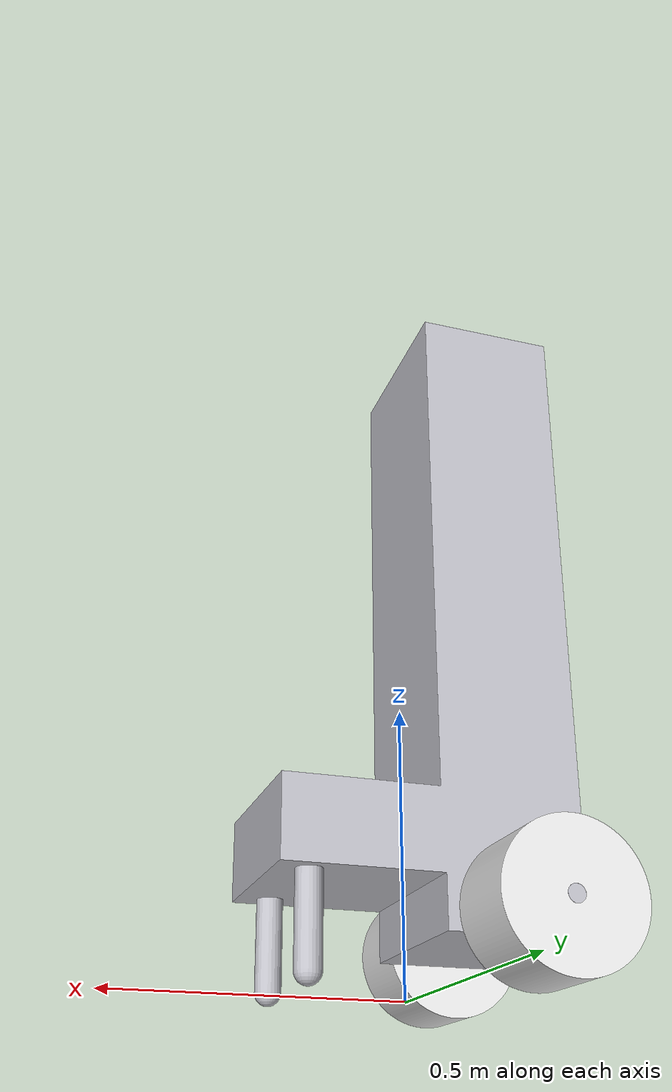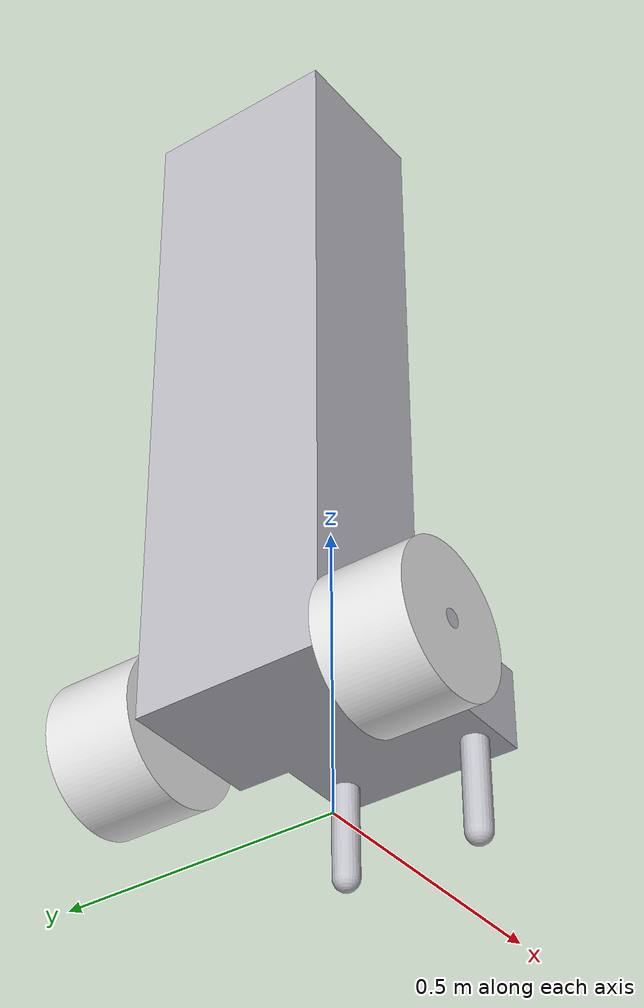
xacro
<?xml version="1.0" ?>
<robot name="simplify" xmlns:xacro="http://www.ros.org/wiki/xacro">

<xacro:include filename="$(find simplify_description)/urdf/materials.xacro" />
<xacro:include filename="$(find simplify_description)/urdf/simplify.trans" />
<xacro:include filename="$(find simplify_description)/urdf/simplify.gazebo" />
<link name="base_link">
  <inertial>
    <origin xyz="-0.10155438032503997 4.4554234660986317e-17 0.6132554860302354" rpy="0 0 0"/>
    <mass value="282.1921384796744"/>
    <inertia ixx="35.382906" iyy="36.423757" izz="5.928749" ixy="0.0" iyz="0.0" ixz="3.235891"/>
  </inertial>
  <visual>
    <origin xyz="0 0 0" rpy="0 0 0"/>
    <geometry>
      <mesh filename="package://simplify_description/meshes/base_link.stl" scale="0.001 0.001 0.001"/>
    </geometry>
    <material name="aluminum_satin"/>
  </visual>
  <collision>
    <origin xyz="0 0 0" rpy="0 0 0"/>
    <geometry>
      <mesh filename="package://simplify_description/meshes/base_link.stl" scale="0.001 0.001 0.001"/>
    </geometry>
  </collision>
</link>

<link name="camera_1">
  <inertial>
    <origin xyz="0.0 3.860015400081353e-17 0.022499999999999964" rpy="0 0 0"/>
    <mass value="2.7320075113780233"/>
    <inertia ixx="0.002169" iyy="0.002169" izz="0.003415" ixy="0.0" iyz="-0.0" ixz="0.0"/>
  </inertial>
  <visual>
    <origin xyz="0.132 -0.0 -1.249369" rpy="0 0 0"/>
    <geometry>
      <mesh filename="package://simplify_description/meshes/camera_1.stl" scale="0.001 0.001 0.001"/>
    </geometry>
    <material name="steel_satin"/>
  </visual>
  <collision>
    <origin xyz="0.132 -0.0 -1.249369" rpy="0 0 0"/>
    <geometry>
      <mesh filename="package://simplify_description/meshes/camera_1.stl" scale="0.001 0.001 0.001"/>
    </geometry>
  </collision>
</link>

<link name="right_wheel_1">
  <inertial>
    <origin xyz="1.4028552336453615e-07 0.0765000000000001 5.449236178955985e-08" rpy="0 0 0"/>
    <mass value="8.023468798343766"/>
    <inertia ixx="0.04645" iyy="0.061596" izz="0.04645" ixy="-0.0" iyz="0.0" ixz="0.0"/>
  </inertial>
  <visual>
    <origin xyz="0.155447 0.313 -0.122544" rpy="0 0 0"/>
    <geometry>
      <mesh filename="package://simplify_description/meshes/right_wheel_1.stl" scale="0.001 0.001 0.001"/>
    </geometry>
    <material name="nylon_66_white"/>
  </visual>
  <collision>
    <origin xyz="0.155447 0.313 -0.122544" rpy="0 0 0"/>
    <geometry>
      <mesh filename="package://simplify_description/meshes/right_wheel_1.stl" scale="0.001 0.001 0.001"/>
    </geometry>
  </collision>
</link>

<link name="left_wheel_1">
  <inertial>
    <origin xyz="-1.686858705773897e-07 -0.07649999999999987 -1.733516468288565e-07" rpy="0 0 0"/>
    <mass value="8.023468798343766"/>
    <inertia ixx="0.04645" iyy="0.061596" izz="0.04645" ixy="-0.0" iyz="0.0" ixz="0.0"/>
  </inertial>
  <visual>
    <origin xyz="0.155447 -0.313 -0.122544" rpy="0 0 0"/>
    <geometry>
      <mesh filename="package://simplify_description/meshes/left_wheel_1.stl" scale="0.001 0.001 0.001"/>
    </geometry>
    <material name="nylon_66_white"/>
  </visual>
  <collision>
    <origin xyz="0.155447 -0.313 -0.122544" rpy="0 0 0"/>
    <geometry>
      <mesh filename="package://simplify_description/meshes/left_wheel_1.stl" scale="0.001 0.001 0.001"/>
    </geometry>
  </collision>
</link>

<joint name="Rigid1" type="fixed">
  <origin xyz="-0.132 0.0 1.249369" rpy="0 0 0"/>
  <parent link="base_link"/>
  <child link="camera_1"/>
</joint>

<joint name="Rev4" type="continuous">
  <origin xyz="-0.155447 -0.313 0.122544" rpy="0 0 0"/>
  <parent link="base_link"/>
  <child link="right_wheel_1"/>
  <axis xyz="0.0 -1.0 0.0"/>
</joint>

<joint name="Rev5" type="continuous">
  <origin xyz="-0.155447 0.313 0.122544" rpy="0 0 0"/>
  <parent link="base_link"/>
  <child link="left_wheel_1"/>
  <axis xyz="0.0 1.0 0.0"/>
</joint>

</robot>

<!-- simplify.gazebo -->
<robot name="simplify" xmlns:xacro="http://www.ros.org/wiki/xacro" >

<xacro:property name="body_color" value="Gazebo/Silver" />

<gazebo>
  <plugin name="control" filename="libgazebo_ros_control.so"/>
</gazebo>
<gazebo reference="base_link">
  <material>${body_color}</material>
  <mu1>0.2</mu1>
  <mu2>0.2</mu2>
  <selfCollide>true</selfCollide>
  <gravity>true</gravity>
</gazebo>

<gazebo reference="camera_1">
  <material>${body_color}</material>
  <mu1>0.2</mu1>
  <mu2>0.2</mu2>
  <selfCollide>true</selfCollide>
</gazebo>

<gazebo reference="right_wheel_1">
  <material>${body_color}</material>
  <mu1>0.2</mu1>
  <mu2>0.2</mu2>
  <selfCollide>true</selfCollide>
</gazebo>

<gazebo reference="left_wheel_1">
  <material>${body_color}</material>
  <mu1>0.2</mu1>
  <mu2>0.2</mu2>
  <selfCollide>true</selfCollide>
</gazebo>

</robot>
